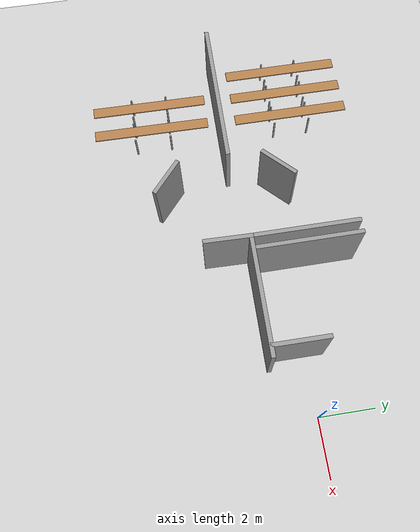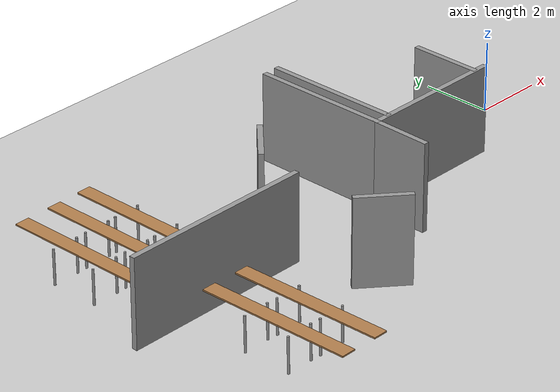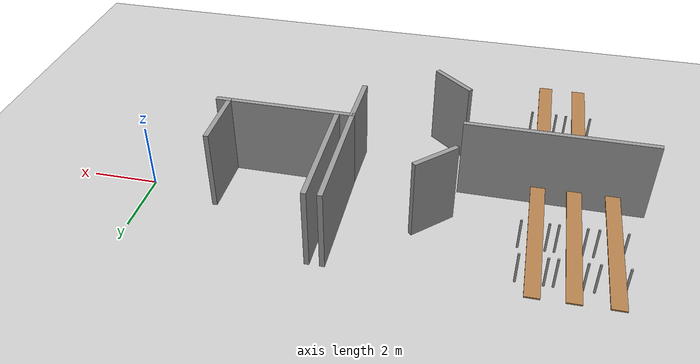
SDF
<sdf version="1.6">
 <world name="default">
  <model name="ground_plane">
   <static>1</static>
   <link name="link">
    <collision name="collision">
     <geometry><plane><normal>0 0 1</normal><size>100 100</size></plane></geometry>
     <surface><friction><ode><mu>100</mu><mu2>50</mu2></ode></friction></surface>
    </collision>
    <visual name="visual">
     <cast_shadows>0</cast_shadows>
     <geometry><plane><normal>0 0 1</normal><size>100 100</size></plane></geometry>
     <material>
      <script><uri>file://media/materials/scripts/gazebo.material</uri><name>Gazebo/Grey</name></script>
     </material>
    </visual>
   </link>
  </model>
  <model name="ca_vignal_1">
   <pose>-8.21048 -6.13752 0 0 -0 0</pose>
   <link name="Wall_10">
    <collision name="Wall_10_Collision">
     <geometry><box><size>1.49437 0.15 2.5</size></box></geometry>
     <pose>0 0 1.25 0 -0 0</pose>
    </collision>
    <visual name="Wall_10_Visual">
     <pose>0 0 1.25 0 -0 0</pose>
     <geometry><box><size>1.49437 0.15 2.5</size></box></geometry>
     <material>
      <script><uri>file://media/materials/scripts/gazebo.material</uri><name>Gazebo/Grey</name></script>
      <ambient>1 1 1 1</ambient>
     </material>
    </visual>
    <pose>-0.384063 2.18943 0 0 -0 2.44358</pose>
   </link>
   <link name="Wall_42">
    <collision name="Wall_42_Collision">
     <geometry><box><size>5.5 0.15 2.5</size></box></geometry>
     <pose>0 0 1.25 0 -0 0</pose>
    </collision>
    <visual name="Wall_42_Visual">
     <pose>0 0 1.25 0 -0 0</pose>
     <geometry><box><size>5.5 0.15 2.5</size></box></geometry>
     <material>
      <script><uri>file://media/materials/scripts/gazebo.material</uri><name>Gazebo/Grey</name></script>
      <ambient>1 1 1 1</ambient>
     </material>
    </visual>
    <pose>-3.69472 4.47149 0 0 -0 0</pose>
   </link>
   <link name="Wall_51">
    <collision name="Wall_51_Collision">
     <geometry><box><size>4.25 0.15 2.5</size></box></geometry>
     <pose>0 0 1.25 0 -0 0</pose>
    </collision>
    <visual name="Wall_51_Visual">
     <pose>0 0 1.25 0 -0 0</pose>
     <geometry><box><size>4.25 0.15 2.5</size></box></geometry>
     <material>
      <script><uri>file://media/materials/scripts/gazebo.material</uri><name>Gazebo/Grey</name></script>
      <ambient>1 1 1 1</ambient>
     </material>
    </visual>
    <pose>4.31972 4.76695 0 0 -0 0</pose>
   </link>
   <link name="Wall_54">
    <collision name="Wall_54_Collision">
     <geometry><box><size>3.851 0.15 2.5</size></box></geometry>
     <pose>0 0 1.25 0 -0 0</pose>
    </collision>
    <visual name="Wall_54_Visual">
     <pose>0 0 1.25 0 -0 0</pose>
     <geometry><box><size>3.851 0.15 2.5</size></box></geometry>
     <material>
      <script><uri>file://media/materials/scripts/gazebo.material</uri><name>Gazebo/Grey</name></script>
      <ambient>1 1 1 1</ambient>
     </material>
    </visual>
    <pose>2.6998 6.66167 0 0 -0 1.5762</pose>
   </link>
   <link name="Wall_56">
    <collision name="Wall_56_Collision">
     <geometry><box><size>3.88734 0.15 2.5</size></box></geometry>
     <pose>0 0 1.25 0 -0 0</pose>
    </collision>
    <visual name="Wall_56_Visual">
     <pose>0 0 1.25 0 -0 0</pose>
     <geometry><box><size>3.88734 0.15 2.5</size></box></geometry>
     <material>
      <script><uri>file://media/materials/scripts/gazebo.material</uri><name>Gazebo/Grey</name></script>
      <ambient>1 1 1 1</ambient>
     </material>
    </visual>
    <pose>2.26185 6.63562 0 0 0 -1.56659</pose>
   </link>
   <link name="Wall_6">
    <collision name="Wall_6_Collision">
     <geometry><box><size>1.5 0.15 2.5</size></box></geometry>
     <pose>0 0 1.25 0 -0 0</pose>
    </collision>
    <visual name="Wall_6_Visual">
     <pose>0 0 1.25 0 -0 0</pose>
     <geometry><box><size>1.5 0.15 2.5</size></box></geometry>
     <material>
      <script><uri>file://media/materials/scripts/gazebo.material</uri><name>Gazebo/Grey</name></script>
      <ambient>1 1 1 1</ambient>
     </material>
    </visual>
    <pose>-0.385857 6.20886 0 0 0 -2.35619</pose>
   </link>
   <link name="Wall_60">
    <collision name="Wall_60_Collision">
     <geometry><box><size>2 0.15 2.5</size></box></geometry>
     <pose>0 0 1.25 0 -0 0</pose>
    </collision>
    <visual name="Wall_60_Visual">
     <pose>0 0 1.25 0 -0 0</pose>
     <geometry><box><size>2 0.15 2.5</size></box></geometry>
     <material>
      <script><uri>file://media/materials/scripts/gazebo.material</uri><name>Gazebo/Grey</name></script>
      <ambient>1 1 1 1</ambient>
     </material>
    </visual>
    <pose>6.0398 5.73717 0 0 0 -1.5708</pose>
   </link>
   <link name="Wall_84">
    <collision name="Wall_84_Collision">
     <geometry><box><size>1.72888 0.15 2.5</size></box></geometry>
     <pose>0 0 1.25 0 -0 0</pose>
    </collision>
    <visual name="Wall_84_Visual">
     <pose>0 0 1.25 0 -0 0</pose>
     <geometry><box><size>1.72888 0.15 2.5</size></box></geometry>
     <material>
      <script><uri>file://media/materials/scripts/gazebo.material</uri><name>Gazebo/Grey</name></script>
      <ambient>1 1 1 1</ambient>
     </material>
    </visual>
    <pose>2.25629 3.97763 0 0 -0 1.55378</pose>
   </link>
   <static>1</static>
  </model>
  <model name="tablesclass_clone_6">
   <link name="link">
    <inertial>
     <inertia><ixx>0</ixx><ixy>0</ixy><ixz>0</ixz><iyy>0</iyy><iyz>0</iyz><izz>0</izz></inertia>
     <mass>1.73923</mass>
    </inertial>
    <visual name="front_right_leg">
     <pose>0.68 -0.38 0.5 0 -0 0</pose>
     <geometry><cylinder><radius>0.0324505</radius><length>1</length></cylinder></geometry>
     <material>
      <script><uri>file://media/materials/scripts/gazebo.material</uri><name>Gazebo/Grey</name></script>
      <ambient>0.3 0.3 0.3 1</ambient>
      <diffuse>0.7 0.7 0.7 1</diffuse>
      <specular>0.01 0.01 0.01 1</specular>
      <emissive>0 0 0 1</emissive>
     </material>
    </visual>
    <visual name="back_left_leg">
     <pose>-0.68 0.38 0.5 0 -0 0</pose>
     <geometry><cylinder><radius>0.0324505</radius><length>1</length></cylinder></geometry>
     <material>
      <script><uri>file://media/materials/scripts/gazebo.material</uri><name>Gazebo/Grey</name></script>
      <ambient>0.3 0.3 0.3 1</ambient>
      <diffuse>0.7 0.7 0.7 1</diffuse>
      <specular>0.01 0.01 0.01 1</specular>
      <emissive>0 0 0 1</emissive>
     </material>
    </visual>
    <visual name="front_left_leg">
     <pose>0.68 0.38 0.5 0 -0 0</pose>
     <geometry><cylinder><radius>0.0324505</radius><length>1</length></cylinder></geometry>
     <material>
      <script><uri>file://media/materials/scripts/gazebo.material</uri><name>Gazebo/Grey</name></script>
      <ambient>0.3 0.3 0.3 1</ambient>
      <diffuse>0.7 0.7 0.7 1</diffuse>
      <specular>0.01 0.01 0.01 1</specular>
      <emissive>0 0 0 1</emissive>
     </material>
    </visual>
    <visual name="visual1">
     <pose>0 0 1 0 -0 0</pose>
     <geometry><box><size>4.38513 0.412326 0.04</size></box></geometry>
     <material>
      <script><uri>file://media/materials/scripts/gazebo.material</uri><name>Gazebo/Wood</name></script>
      <ambient>1 1 1 1</ambient>
      <diffuse>1 1 1 1</diffuse>
      <specular>0.2 0.2 0.2 1</specular>
      <emissive>0 0 0 1</emissive>
     </material>
    </visual>
    <visual name="back_right_leg">
     <pose>-0.68 -0.38 0.5 0 -0 0</pose>
     <geometry><cylinder><radius>0.0324505</radius><length>1</length></cylinder></geometry>
     <material>
      <script><uri>file://media/materials/scripts/gazebo.material</uri><name>Gazebo/Grey</name></script>
      <ambient>0.3 0.3 0.3 1</ambient>
      <diffuse>0.7 0.7 0.7 1</diffuse>
      <specular>0.01 0.01 0.01 1</specular>
      <emissive>0 0 0 1</emissive>
     </material>
    </visual>
    <collision name="front_left_leg">
     <pose>0.68 0.38 0.5 0 -0 0</pose>
     <geometry><cylinder><radius>0.03245</radius><length>1</length></cylinder></geometry>
     <surface>
      <friction>
       <ode><mu>1</mu><mu2>1</mu2><fdir1>0 0 0</fdir1><slip1>0</slip1><slip2>0</slip2></ode>
       <torsional>
        <coefficient>1</coefficient>
        <patch_radius>0</patch_radius>
        <surface_radius>0</surface_radius>
        <use_patch_radius>1</use_patch_radius>
        <ode><slip>0</slip></ode>
       </torsional>
      </friction>
      <bounce><restitution_coefficient>0</restitution_coefficient><threshold>1e+06</threshold></bounce>
      <contact>
       <collide_without_contact>0</collide_without_contact>
       <collide_without_contact_bitmask>1</collide_without_contact_bitmask>
       <collide_bitmask>1</collide_bitmask>
       <ode>
        <soft_cfm>0</soft_cfm>
        <soft_erp>0.2</soft_erp>
        <kp>1e+13</kp>
        <kd>1</kd>
        <max_vel>0.01</max_vel>
        <min_depth>0</min_depth>
       </ode>
       <bullet>
        <split_impulse>1</split_impulse>
        <split_impulse_penetration_threshold>-0.01</split_impulse_penetration_threshold>
        <soft_cfm>0</soft_cfm>
        <soft_erp>0.2</soft_erp>
        <kp>1e+13</kp>
        <kd>1</kd>
       </bullet>
      </contact>
     </surface>
    </collision>
    <collision name="front_right_leg">
     <pose>0.68 -0.38 0.5 0 -0 0</pose>
     <geometry><cylinder><radius>0.03245</radius><length>1</length></cylinder></geometry>
     <surface>
      <friction>
       <ode><mu>1</mu><mu2>1</mu2><fdir1>0 0 0</fdir1><slip1>0</slip1><slip2>0</slip2></ode>
       <torsional>
        <coefficient>1</coefficient>
        <patch_radius>0</patch_radius>
        <surface_radius>0</surface_radius>
        <use_patch_radius>1</use_patch_radius>
        <ode><slip>0</slip></ode>
       </torsional>
      </friction>
      <bounce><restitution_coefficient>0</restitution_coefficient><threshold>1e+06</threshold></bounce>
      <contact>
       <collide_without_contact>0</collide_without_contact>
       <collide_without_contact_bitmask>1</collide_without_contact_bitmask>
       <collide_bitmask>1</collide_bitmask>
       <ode>
        <soft_cfm>0</soft_cfm>
        <soft_erp>0.2</soft_erp>
        <kp>1e+13</kp>
        <kd>1</kd>
        <max_vel>0.01</max_vel>
        <min_depth>0</min_depth>
       </ode>
       <bullet>
        <split_impulse>1</split_impulse>
        <split_impulse_penetration_threshold>-0.01</split_impulse_penetration_threshold>
        <soft_cfm>0</soft_cfm>
        <soft_erp>0.2</soft_erp>
        <kp>1e+13</kp>
        <kd>1</kd>
       </bullet>
      </contact>
     </surface>
    </collision>
    <collision name="back_left_leg">
     <pose>-0.68 0.38 0.5 0 -0 0</pose>
     <geometry><cylinder><radius>0.03245</radius><length>1</length></cylinder></geometry>
     <surface>
      <friction>
       <ode><mu>1</mu><mu2>1</mu2><fdir1>0 0 0</fdir1><slip1>0</slip1><slip2>0</slip2></ode>
       <torsional>
        <coefficient>1</coefficient>
        <patch_radius>0</patch_radius>
        <surface_radius>0</surface_radius>
        <use_patch_radius>1</use_patch_radius>
        <ode><slip>0</slip></ode>
       </torsional>
      </friction>
      <bounce><restitution_coefficient>0</restitution_coefficient><threshold>1e+06</threshold></bounce>
      <contact>
       <collide_without_contact>0</collide_without_contact>
       <collide_without_contact_bitmask>1</collide_without_contact_bitmask>
       <collide_bitmask>1</collide_bitmask>
       <ode>
        <soft_cfm>0</soft_cfm>
        <soft_erp>0.2</soft_erp>
        <kp>1e+13</kp>
        <kd>1</kd>
        <max_vel>0.01</max_vel>
        <min_depth>0</min_depth>
       </ode>
       <bullet>
        <split_impulse>1</split_impulse>
        <split_impulse_penetration_threshold>-0.01</split_impulse_penetration_threshold>
        <soft_cfm>0</soft_cfm>
        <soft_erp>0.2</soft_erp>
        <kp>1e+13</kp>
        <kd>1</kd>
       </bullet>
      </contact>
     </surface>
    </collision>
    <collision name="back_right_leg">
     <pose>-0.68 -0.38 0.5 0 -0 0</pose>
     <geometry><cylinder><radius>0.03245</radius><length>1</length></cylinder></geometry>
     <surface>
      <friction>
       <ode><mu>1</mu><mu2>1</mu2><fdir1>0 0 0</fdir1><slip1>0</slip1><slip2>0</slip2></ode>
       <torsional>
        <coefficient>1</coefficient>
        <patch_radius>0</patch_radius>
        <surface_radius>0</surface_radius>
        <use_patch_radius>1</use_patch_radius>
        <ode><slip>0</slip></ode>
       </torsional>
      </friction>
      <bounce><restitution_coefficient>0</restitution_coefficient><threshold>1e+06</threshold></bounce>
      <contact>
       <collide_without_contact>0</collide_without_contact>
       <collide_without_contact_bitmask>1</collide_without_contact_bitmask>
       <collide_bitmask>1</collide_bitmask>
       <ode>
        <soft_cfm>0</soft_cfm>
        <soft_erp>0.2</soft_erp>
        <kp>1e+13</kp>
        <kd>1</kd>
        <max_vel>0.01</max_vel>
        <min_depth>0</min_depth>
       </ode>
       <bullet>
        <split_impulse>1</split_impulse>
        <split_impulse_penetration_threshold>-0.01</split_impulse_penetration_threshold>
        <soft_cfm>0</soft_cfm>
        <soft_erp>0.2</soft_erp>
        <kp>1e+13</kp>
        <kd>1</kd>
       </bullet>
      </contact>
     </surface>
    </collision>
    <collision name="surface">
     <pose>0 0 1 0 -0 0</pose>
     <geometry><box><size>4.69836 0.412326 0.03</size></box></geometry>
     <surface>
      <friction>
       <ode><mu>0.6</mu><mu2>0.6</mu2><fdir1>0 0 0</fdir1><slip1>0</slip1><slip2>0</slip2></ode>
       <torsional>
        <coefficient>1</coefficient>
        <patch_radius>0</patch_radius>
        <surface_radius>0</surface_radius>
        <use_patch_radius>1</use_patch_radius>
        <ode><slip>0</slip></ode>
       </torsional>
      </friction>
      <bounce><restitution_coefficient>0</restitution_coefficient><threshold>1e+06</threshold></bounce>
      <contact>
       <collide_without_contact>0</collide_without_contact>
       <collide_without_contact_bitmask>1</collide_without_contact_bitmask>
       <collide_bitmask>1</collide_bitmask>
       <ode>
        <soft_cfm>0</soft_cfm>
        <soft_erp>0.2</soft_erp>
        <kp>1e+13</kp>
        <kd>1</kd>
        <max_vel>0.01</max_vel>
        <min_depth>0</min_depth>
       </ode>
       <bullet>
        <split_impulse>1</split_impulse>
        <split_impulse_penetration_threshold>-0.01</split_impulse_penetration_threshold>
        <soft_cfm>0</soft_cfm>
        <soft_erp>0.2</soft_erp>
        <kp>1e+13</kp>
        <kd>1</kd>
       </bullet>
      </contact>
     </surface>
    </collision>
   </link>
   <static>0</static>
   <pose>-12.6036 -4.30226 0.011054 -3e-06 -0.015515 -1.56411</pose>
  </model>
  <model name="tablesclass_clone_8">
   <link name="link">
    <inertial>
     <inertia><ixx>0</ixx><ixy>0</ixy><ixz>0</ixz><iyy>0</iyy><iyz>0</iyz><izz>0</izz></inertia>
     <mass>1.73923</mass>
    </inertial>
    <visual name="front_right_leg">
     <pose>0.68 -0.38 0.5 0 -0 0</pose>
     <geometry><cylinder><radius>0.0324505</radius><length>1</length></cylinder></geometry>
     <material>
      <script><uri>file://media/materials/scripts/gazebo.material</uri><name>Gazebo/Grey</name></script>
      <ambient>0.3 0.3 0.3 1</ambient>
      <diffuse>0.7 0.7 0.7 1</diffuse>
      <specular>0.01 0.01 0.01 1</specular>
      <emissive>0 0 0 1</emissive>
     </material>
    </visual>
    <visual name="back_left_leg">
     <pose>-0.68 0.38 0.5 0 -0 0</pose>
     <geometry><cylinder><radius>0.0324505</radius><length>1</length></cylinder></geometry>
     <material>
      <script><uri>file://media/materials/scripts/gazebo.material</uri><name>Gazebo/Grey</name></script>
      <ambient>0.3 0.3 0.3 1</ambient>
      <diffuse>0.7 0.7 0.7 1</diffuse>
      <specular>0.01 0.01 0.01 1</specular>
      <emissive>0 0 0 1</emissive>
     </material>
    </visual>
    <visual name="front_left_leg">
     <pose>0.68 0.38 0.5 0 -0 0</pose>
     <geometry><cylinder><radius>0.0324505</radius><length>1</length></cylinder></geometry>
     <material>
      <script><uri>file://media/materials/scripts/gazebo.material</uri><name>Gazebo/Grey</name></script>
      <ambient>0.3 0.3 0.3 1</ambient>
      <diffuse>0.7 0.7 0.7 1</diffuse>
      <specular>0.01 0.01 0.01 1</specular>
      <emissive>0 0 0 1</emissive>
     </material>
    </visual>
    <visual name="visual1">
     <pose>0 0 1 0 -0 0</pose>
     <geometry><box><size>4.38513 0.412326 0.04</size></box></geometry>
     <material>
      <script><uri>file://media/materials/scripts/gazebo.material</uri><name>Gazebo/Wood</name></script>
      <ambient>1 1 1 1</ambient>
      <diffuse>1 1 1 1</diffuse>
      <specular>0.2 0.2 0.2 1</specular>
      <emissive>0 0 0 1</emissive>
     </material>
    </visual>
    <visual name="back_right_leg">
     <pose>-0.68 -0.38 0.5 0 -0 0</pose>
     <geometry><cylinder><radius>0.0324505</radius><length>1</length></cylinder></geometry>
     <material>
      <script><uri>file://media/materials/scripts/gazebo.material</uri><name>Gazebo/Grey</name></script>
      <ambient>0.3 0.3 0.3 1</ambient>
      <diffuse>0.7 0.7 0.7 1</diffuse>
      <specular>0.01 0.01 0.01 1</specular>
      <emissive>0 0 0 1</emissive>
     </material>
    </visual>
    <collision name="front_left_leg">
     <pose>0.68 0.38 0.5 0 -0 0</pose>
     <geometry><cylinder><radius>0.03245</radius><length>1</length></cylinder></geometry>
     <surface>
      <friction>
       <ode><mu>1</mu><mu2>1</mu2><fdir1>0 0 0</fdir1><slip1>0</slip1><slip2>0</slip2></ode>
       <torsional>
        <coefficient>1</coefficient>
        <patch_radius>0</patch_radius>
        <surface_radius>0</surface_radius>
        <use_patch_radius>1</use_patch_radius>
        <ode><slip>0</slip></ode>
       </torsional>
      </friction>
      <bounce><restitution_coefficient>0</restitution_coefficient><threshold>1e+06</threshold></bounce>
      <contact>
       <collide_without_contact>0</collide_without_contact>
       <collide_without_contact_bitmask>1</collide_without_contact_bitmask>
       <collide_bitmask>1</collide_bitmask>
       <ode>
        <soft_cfm>0</soft_cfm>
        <soft_erp>0.2</soft_erp>
        <kp>1e+13</kp>
        <kd>1</kd>
        <max_vel>0.01</max_vel>
        <min_depth>0</min_depth>
       </ode>
       <bullet>
        <split_impulse>1</split_impulse>
        <split_impulse_penetration_threshold>-0.01</split_impulse_penetration_threshold>
        <soft_cfm>0</soft_cfm>
        <soft_erp>0.2</soft_erp>
        <kp>1e+13</kp>
        <kd>1</kd>
       </bullet>
      </contact>
     </surface>
    </collision>
    <collision name="front_right_leg">
     <pose>0.68 -0.38 0.5 0 -0 0</pose>
     <geometry><cylinder><radius>0.03245</radius><length>1</length></cylinder></geometry>
     <surface>
      <friction>
       <ode><mu>1</mu><mu2>1</mu2><fdir1>0 0 0</fdir1><slip1>0</slip1><slip2>0</slip2></ode>
       <torsional>
        <coefficient>1</coefficient>
        <patch_radius>0</patch_radius>
        <surface_radius>0</surface_radius>
        <use_patch_radius>1</use_patch_radius>
        <ode><slip>0</slip></ode>
       </torsional>
      </friction>
      <bounce><restitution_coefficient>0</restitution_coefficient><threshold>1e+06</threshold></bounce>
      <contact>
       <collide_without_contact>0</collide_without_contact>
       <collide_without_contact_bitmask>1</collide_without_contact_bitmask>
       <collide_bitmask>1</collide_bitmask>
       <ode>
        <soft_cfm>0</soft_cfm>
        <soft_erp>0.2</soft_erp>
        <kp>1e+13</kp>
        <kd>1</kd>
        <max_vel>0.01</max_vel>
        <min_depth>0</min_depth>
       </ode>
       <bullet>
        <split_impulse>1</split_impulse>
        <split_impulse_penetration_threshold>-0.01</split_impulse_penetration_threshold>
        <soft_cfm>0</soft_cfm>
        <soft_erp>0.2</soft_erp>
        <kp>1e+13</kp>
        <kd>1</kd>
       </bullet>
      </contact>
     </surface>
    </collision>
    <collision name="back_left_leg">
     <pose>-0.68 0.38 0.5 0 -0 0</pose>
     <geometry><cylinder><radius>0.03245</radius><length>1</length></cylinder></geometry>
     <surface>
      <friction>
       <ode><mu>1</mu><mu2>1</mu2><fdir1>0 0 0</fdir1><slip1>0</slip1><slip2>0</slip2></ode>
       <torsional>
        <coefficient>1</coefficient>
        <patch_radius>0</patch_radius>
        <surface_radius>0</surface_radius>
        <use_patch_radius>1</use_patch_radius>
        <ode><slip>0</slip></ode>
       </torsional>
      </friction>
      <bounce><restitution_coefficient>0</restitution_coefficient><threshold>1e+06</threshold></bounce>
      <contact>
       <collide_without_contact>0</collide_without_contact>
       <collide_without_contact_bitmask>1</collide_without_contact_bitmask>
       <collide_bitmask>1</collide_bitmask>
       <ode>
        <soft_cfm>0</soft_cfm>
        <soft_erp>0.2</soft_erp>
        <kp>1e+13</kp>
        <kd>1</kd>
        <max_vel>0.01</max_vel>
        <min_depth>0</min_depth>
       </ode>
       <bullet>
        <split_impulse>1</split_impulse>
        <split_impulse_penetration_threshold>-0.01</split_impulse_penetration_threshold>
        <soft_cfm>0</soft_cfm>
        <soft_erp>0.2</soft_erp>
        <kp>1e+13</kp>
        <kd>1</kd>
       </bullet>
      </contact>
     </surface>
    </collision>
    <collision name="back_right_leg">
     <pose>-0.68 -0.38 0.5 0 -0 0</pose>
     <geometry><cylinder><radius>0.03245</radius><length>1</length></cylinder></geometry>
     <surface>
      <friction>
       <ode><mu>1</mu><mu2>1</mu2><fdir1>0 0 0</fdir1><slip1>0</slip1><slip2>0</slip2></ode>
       <torsional>
        <coefficient>1</coefficient>
        <patch_radius>0</patch_radius>
        <surface_radius>0</surface_radius>
        <use_patch_radius>1</use_patch_radius>
        <ode><slip>0</slip></ode>
       </torsional>
      </friction>
      <bounce><restitution_coefficient>0</restitution_coefficient><threshold>1e+06</threshold></bounce>
      <contact>
       <collide_without_contact>0</collide_without_contact>
       <collide_without_contact_bitmask>1</collide_without_contact_bitmask>
       <collide_bitmask>1</collide_bitmask>
       <ode>
        <soft_cfm>0</soft_cfm>
        <soft_erp>0.2</soft_erp>
        <kp>1e+13</kp>
        <kd>1</kd>
        <max_vel>0.01</max_vel>
        <min_depth>0</min_depth>
       </ode>
       <bullet>
        <split_impulse>1</split_impulse>
        <split_impulse_penetration_threshold>-0.01</split_impulse_penetration_threshold>
        <soft_cfm>0</soft_cfm>
        <soft_erp>0.2</soft_erp>
        <kp>1e+13</kp>
        <kd>1</kd>
       </bullet>
      </contact>
     </surface>
    </collision>
    <collision name="surface">
     <pose>0 0 1 0 -0 0</pose>
     <geometry><box><size>4.69836 0.412326 0.03</size></box></geometry>
     <surface>
      <friction>
       <ode><mu>0.6</mu><mu2>0.6</mu2><fdir1>0 0 0</fdir1><slip1>0</slip1><slip2>0</slip2></ode>
       <torsional>
        <coefficient>1</coefficient>
        <patch_radius>0</patch_radius>
        <surface_radius>0</surface_radius>
        <use_patch_radius>1</use_patch_radius>
        <ode><slip>0</slip></ode>
       </torsional>
      </friction>
      <bounce><restitution_coefficient>0</restitution_coefficient><threshold>1e+06</threshold></bounce>
      <contact>
       <collide_without_contact>0</collide_without_contact>
       <collide_without_contact_bitmask>1</collide_without_contact_bitmask>
       <collide_bitmask>1</collide_bitmask>
       <ode>
        <soft_cfm>0</soft_cfm>
        <soft_erp>0.2</soft_erp>
        <kp>1e+13</kp>
        <kd>1</kd>
        <max_vel>0.01</max_vel>
        <min_depth>0</min_depth>
       </ode>
       <bullet>
        <split_impulse>1</split_impulse>
        <split_impulse_penetration_threshold>-0.01</split_impulse_penetration_threshold>
        <soft_cfm>0</soft_cfm>
        <soft_erp>0.2</soft_erp>
        <kp>1e+13</kp>
        <kd>1</kd>
       </bullet>
      </contact>
     </surface>
    </collision>
   </link>
   <static>0</static>
   <pose>-11.5378 -4.3155 0.011741 0 -0.016496 -1.56429</pose>
  </model>
  <model name="tablesclass_clone_9">
   <link name="link">
    <inertial>
     <inertia><ixx>0</ixx><ixy>0</ixy><ixz>0</ixz><iyy>0</iyy><iyz>0</iyz><izz>0</izz></inertia>
     <mass>1.73923</mass>
    </inertial>
    <visual name="front_right_leg">
     <pose>0.68 -0.38 0.5 0 -0 0</pose>
     <geometry><cylinder><radius>0.0324505</radius><length>1</length></cylinder></geometry>
     <material>
      <script><uri>file://media/materials/scripts/gazebo.material</uri><name>Gazebo/Grey</name></script>
      <ambient>0.3 0.3 0.3 1</ambient>
      <diffuse>0.7 0.7 0.7 1</diffuse>
      <specular>0.01 0.01 0.01 1</specular>
      <emissive>0 0 0 1</emissive>
     </material>
    </visual>
    <visual name="back_left_leg">
     <pose>-0.68 0.38 0.5 0 -0 0</pose>
     <geometry><cylinder><radius>0.0324505</radius><length>1</length></cylinder></geometry>
     <material>
      <script><uri>file://media/materials/scripts/gazebo.material</uri><name>Gazebo/Grey</name></script>
      <ambient>0.3 0.3 0.3 1</ambient>
      <diffuse>0.7 0.7 0.7 1</diffuse>
      <specular>0.01 0.01 0.01 1</specular>
      <emissive>0 0 0 1</emissive>
     </material>
    </visual>
    <visual name="front_left_leg">
     <pose>0.68 0.38 0.5 0 -0 0</pose>
     <geometry><cylinder><radius>0.0324505</radius><length>1</length></cylinder></geometry>
     <material>
      <script><uri>file://media/materials/scripts/gazebo.material</uri><name>Gazebo/Grey</name></script>
      <ambient>0.3 0.3 0.3 1</ambient>
      <diffuse>0.7 0.7 0.7 1</diffuse>
      <specular>0.01 0.01 0.01 1</specular>
      <emissive>0 0 0 1</emissive>
     </material>
    </visual>
    <visual name="visual1">
     <pose>0 0 1 0 -0 0</pose>
     <geometry><box><size>4.38513 0.412326 0.04</size></box></geometry>
     <material>
      <script><uri>file://media/materials/scripts/gazebo.material</uri><name>Gazebo/Wood</name></script>
      <ambient>1 1 1 1</ambient>
      <diffuse>1 1 1 1</diffuse>
      <specular>0.2 0.2 0.2 1</specular>
      <emissive>0 0 0 1</emissive>
     </material>
    </visual>
    <visual name="back_right_leg">
     <pose>-0.68 -0.38 0.5 0 -0 0</pose>
     <geometry><cylinder><radius>0.0324505</radius><length>1</length></cylinder></geometry>
     <material>
      <script><uri>file://media/materials/scripts/gazebo.material</uri><name>Gazebo/Grey</name></script>
      <ambient>0.3 0.3 0.3 1</ambient>
      <diffuse>0.7 0.7 0.7 1</diffuse>
      <specular>0.01 0.01 0.01 1</specular>
      <emissive>0 0 0 1</emissive>
     </material>
    </visual>
    <collision name="front_left_leg">
     <pose>0.68 0.38 0.5 0 -0 0</pose>
     <geometry><cylinder><radius>0.03245</radius><length>1</length></cylinder></geometry>
     <surface>
      <friction>
       <ode><mu>1</mu><mu2>1</mu2><fdir1>0 0 0</fdir1><slip1>0</slip1><slip2>0</slip2></ode>
       <torsional>
        <coefficient>1</coefficient>
        <patch_radius>0</patch_radius>
        <surface_radius>0</surface_radius>
        <use_patch_radius>1</use_patch_radius>
        <ode><slip>0</slip></ode>
       </torsional>
      </friction>
      <bounce><restitution_coefficient>0</restitution_coefficient><threshold>1e+06</threshold></bounce>
      <contact>
       <collide_without_contact>0</collide_without_contact>
       <collide_without_contact_bitmask>1</collide_without_contact_bitmask>
       <collide_bitmask>1</collide_bitmask>
       <ode>
        <soft_cfm>0</soft_cfm>
        <soft_erp>0.2</soft_erp>
        <kp>1e+13</kp>
        <kd>1</kd>
        <max_vel>0.01</max_vel>
        <min_depth>0</min_depth>
       </ode>
       <bullet>
        <split_impulse>1</split_impulse>
        <split_impulse_penetration_threshold>-0.01</split_impulse_penetration_threshold>
        <soft_cfm>0</soft_cfm>
        <soft_erp>0.2</soft_erp>
        <kp>1e+13</kp>
        <kd>1</kd>
       </bullet>
      </contact>
     </surface>
    </collision>
    <collision name="front_right_leg">
     <pose>0.68 -0.38 0.5 0 -0 0</pose>
     <geometry><cylinder><radius>0.03245</radius><length>1</length></cylinder></geometry>
     <surface>
      <friction>
       <ode><mu>1</mu><mu2>1</mu2><fdir1>0 0 0</fdir1><slip1>0</slip1><slip2>0</slip2></ode>
       <torsional>
        <coefficient>1</coefficient>
        <patch_radius>0</patch_radius>
        <surface_radius>0</surface_radius>
        <use_patch_radius>1</use_patch_radius>
        <ode><slip>0</slip></ode>
       </torsional>
      </friction>
      <bounce><restitution_coefficient>0</restitution_coefficient><threshold>1e+06</threshold></bounce>
      <contact>
       <collide_without_contact>0</collide_without_contact>
       <collide_without_contact_bitmask>1</collide_without_contact_bitmask>
       <collide_bitmask>1</collide_bitmask>
       <ode>
        <soft_cfm>0</soft_cfm>
        <soft_erp>0.2</soft_erp>
        <kp>1e+13</kp>
        <kd>1</kd>
        <max_vel>0.01</max_vel>
        <min_depth>0</min_depth>
       </ode>
       <bullet>
        <split_impulse>1</split_impulse>
        <split_impulse_penetration_threshold>-0.01</split_impulse_penetration_threshold>
        <soft_cfm>0</soft_cfm>
        <soft_erp>0.2</soft_erp>
        <kp>1e+13</kp>
        <kd>1</kd>
       </bullet>
      </contact>
     </surface>
    </collision>
    <collision name="back_left_leg">
     <pose>-0.68 0.38 0.5 0 -0 0</pose>
     <geometry><cylinder><radius>0.03245</radius><length>1</length></cylinder></geometry>
     <surface>
      <friction>
       <ode><mu>1</mu><mu2>1</mu2><fdir1>0 0 0</fdir1><slip1>0</slip1><slip2>0</slip2></ode>
       <torsional>
        <coefficient>1</coefficient>
        <patch_radius>0</patch_radius>
        <surface_radius>0</surface_radius>
        <use_patch_radius>1</use_patch_radius>
        <ode><slip>0</slip></ode>
       </torsional>
      </friction>
      <bounce><restitution_coefficient>0</restitution_coefficient><threshold>1e+06</threshold></bounce>
      <contact>
       <collide_without_contact>0</collide_without_contact>
       <collide_without_contact_bitmask>1</collide_without_contact_bitmask>
       <collide_bitmask>1</collide_bitmask>
       <ode>
        <soft_cfm>0</soft_cfm>
        <soft_erp>0.2</soft_erp>
        <kp>1e+13</kp>
        <kd>1</kd>
        <max_vel>0.01</max_vel>
        <min_depth>0</min_depth>
       </ode>
       <bullet>
        <split_impulse>1</split_impulse>
        <split_impulse_penetration_threshold>-0.01</split_impulse_penetration_threshold>
        <soft_cfm>0</soft_cfm>
        <soft_erp>0.2</soft_erp>
        <kp>1e+13</kp>
        <kd>1</kd>
       </bullet>
      </contact>
     </surface>
    </collision>
    <collision name="back_right_leg">
     <pose>-0.68 -0.38 0.5 0 -0 0</pose>
     <geometry><cylinder><radius>0.03245</radius><length>1</length></cylinder></geometry>
     <surface>
      <friction>
       <ode><mu>1</mu><mu2>1</mu2><fdir1>0 0 0</fdir1><slip1>0</slip1><slip2>0</slip2></ode>
       <torsional>
        <coefficient>1</coefficient>
        <patch_radius>0</patch_radius>
        <surface_radius>0</surface_radius>
        <use_patch_radius>1</use_patch_radius>
        <ode><slip>0</slip></ode>
       </torsional>
      </friction>
      <bounce><restitution_coefficient>0</restitution_coefficient><threshold>1e+06</threshold></bounce>
      <contact>
       <collide_without_contact>0</collide_without_contact>
       <collide_without_contact_bitmask>1</collide_without_contact_bitmask>
       <collide_bitmask>1</collide_bitmask>
       <ode>
        <soft_cfm>0</soft_cfm>
        <soft_erp>0.2</soft_erp>
        <kp>1e+13</kp>
        <kd>1</kd>
        <max_vel>0.01</max_vel>
        <min_depth>0</min_depth>
       </ode>
       <bullet>
        <split_impulse>1</split_impulse>
        <split_impulse_penetration_threshold>-0.01</split_impulse_penetration_threshold>
        <soft_cfm>0</soft_cfm>
        <soft_erp>0.2</soft_erp>
        <kp>1e+13</kp>
        <kd>1</kd>
       </bullet>
      </contact>
     </surface>
    </collision>
    <collision name="surface">
     <pose>0 0 1 0 -0 0</pose>
     <geometry><box><size>4.69836 0.412326 0.03</size></box></geometry>
     <surface>
      <friction>
       <ode><mu>0.6</mu><mu2>0.6</mu2><fdir1>0 0 0</fdir1><slip1>0</slip1><slip2>0</slip2></ode>
       <torsional>
        <coefficient>1</coefficient>
        <patch_radius>0</patch_radius>
        <surface_radius>0</surface_radius>
        <use_patch_radius>1</use_patch_radius>
        <ode><slip>0</slip></ode>
       </torsional>
      </friction>
      <bounce><restitution_coefficient>0</restitution_coefficient><threshold>1e+06</threshold></bounce>
      <contact>
       <collide_without_contact>0</collide_without_contact>
       <collide_without_contact_bitmask>1</collide_without_contact_bitmask>
       <collide_bitmask>1</collide_bitmask>
       <ode>
        <soft_cfm>0</soft_cfm>
        <soft_erp>0.2</soft_erp>
        <kp>1e+13</kp>
        <kd>1</kd>
        <max_vel>0.01</max_vel>
        <min_depth>0</min_depth>
       </ode>
       <bullet>
        <split_impulse>1</split_impulse>
        <split_impulse_penetration_threshold>-0.01</split_impulse_penetration_threshold>
        <soft_cfm>0</soft_cfm>
        <soft_erp>0.2</soft_erp>
        <kp>1e+13</kp>
        <kd>1</kd>
       </bullet>
      </contact>
     </surface>
    </collision>
   </link>
   <static>0</static>
   <pose>-13.5695 1.12448 -8e-06 0 2e-06 -1.56441</pose>
  </model>
  <model name="tablesclass_clone_10">
   <link name="link">
    <inertial>
     <inertia><ixx>0</ixx><ixy>0</ixy><ixz>0</ixz><iyy>0</iyy><iyz>0</iyz><izz>0</izz></inertia>
     <mass>1.73923</mass>
    </inertial>
    <visual name="front_right_leg">
     <pose>0.68 -0.38 0.5 0 -0 0</pose>
     <geometry><cylinder><radius>0.0324505</radius><length>1</length></cylinder></geometry>
     <material>
      <script><uri>file://media/materials/scripts/gazebo.material</uri><name>Gazebo/Grey</name></script>
      <ambient>0.3 0.3 0.3 1</ambient>
      <diffuse>0.7 0.7 0.7 1</diffuse>
      <specular>0.01 0.01 0.01 1</specular>
      <emissive>0 0 0 1</emissive>
     </material>
    </visual>
    <visual name="back_left_leg">
     <pose>-0.68 0.38 0.5 0 -0 0</pose>
     <geometry><cylinder><radius>0.0324505</radius><length>1</length></cylinder></geometry>
     <material>
      <script><uri>file://media/materials/scripts/gazebo.material</uri><name>Gazebo/Grey</name></script>
      <ambient>0.3 0.3 0.3 1</ambient>
      <diffuse>0.7 0.7 0.7 1</diffuse>
      <specular>0.01 0.01 0.01 1</specular>
      <emissive>0 0 0 1</emissive>
     </material>
    </visual>
    <visual name="front_left_leg">
     <pose>0.68 0.38 0.5 0 -0 0</pose>
     <geometry><cylinder><radius>0.0324505</radius><length>1</length></cylinder></geometry>
     <material>
      <script><uri>file://media/materials/scripts/gazebo.material</uri><name>Gazebo/Grey</name></script>
      <ambient>0.3 0.3 0.3 1</ambient>
      <diffuse>0.7 0.7 0.7 1</diffuse>
      <specular>0.01 0.01 0.01 1</specular>
      <emissive>0 0 0 1</emissive>
     </material>
    </visual>
    <visual name="visual1">
     <pose>0 0 1 0 -0 0</pose>
     <geometry><box><size>4.38513 0.412326 0.04</size></box></geometry>
     <material>
      <script><uri>file://media/materials/scripts/gazebo.material</uri><name>Gazebo/Wood</name></script>
      <ambient>1 1 1 1</ambient>
      <diffuse>1 1 1 1</diffuse>
      <specular>0.2 0.2 0.2 1</specular>
      <emissive>0 0 0 1</emissive>
     </material>
    </visual>
    <visual name="back_right_leg">
     <pose>-0.68 -0.38 0.5 0 -0 0</pose>
     <geometry><cylinder><radius>0.0324505</radius><length>1</length></cylinder></geometry>
     <material>
      <script><uri>file://media/materials/scripts/gazebo.material</uri><name>Gazebo/Grey</name></script>
      <ambient>0.3 0.3 0.3 1</ambient>
      <diffuse>0.7 0.7 0.7 1</diffuse>
      <specular>0.01 0.01 0.01 1</specular>
      <emissive>0 0 0 1</emissive>
     </material>
    </visual>
    <collision name="front_left_leg">
     <pose>0.68 0.38 0.5 0 -0 0</pose>
     <geometry><cylinder><radius>0.03245</radius><length>1</length></cylinder></geometry>
     <surface>
      <friction>
       <ode><mu>1</mu><mu2>1</mu2><fdir1>0 0 0</fdir1><slip1>0</slip1><slip2>0</slip2></ode>
       <torsional>
        <coefficient>1</coefficient>
        <patch_radius>0</patch_radius>
        <surface_radius>0</surface_radius>
        <use_patch_radius>1</use_patch_radius>
        <ode><slip>0</slip></ode>
       </torsional>
      </friction>
      <bounce><restitution_coefficient>0</restitution_coefficient><threshold>1e+06</threshold></bounce>
      <contact>
       <collide_without_contact>0</collide_without_contact>
       <collide_without_contact_bitmask>1</collide_without_contact_bitmask>
       <collide_bitmask>1</collide_bitmask>
       <ode>
        <soft_cfm>0</soft_cfm>
        <soft_erp>0.2</soft_erp>
        <kp>1e+13</kp>
        <kd>1</kd>
        <max_vel>0.01</max_vel>
        <min_depth>0</min_depth>
       </ode>
       <bullet>
        <split_impulse>1</split_impulse>
        <split_impulse_penetration_threshold>-0.01</split_impulse_penetration_threshold>
        <soft_cfm>0</soft_cfm>
        <soft_erp>0.2</soft_erp>
        <kp>1e+13</kp>
        <kd>1</kd>
       </bullet>
      </contact>
     </surface>
    </collision>
    <collision name="front_right_leg">
     <pose>0.68 -0.38 0.5 0 -0 0</pose>
     <geometry><cylinder><radius>0.03245</radius><length>1</length></cylinder></geometry>
     <surface>
      <friction>
       <ode><mu>1</mu><mu2>1</mu2><fdir1>0 0 0</fdir1><slip1>0</slip1><slip2>0</slip2></ode>
       <torsional>
        <coefficient>1</coefficient>
        <patch_radius>0</patch_radius>
        <surface_radius>0</surface_radius>
        <use_patch_radius>1</use_patch_radius>
        <ode><slip>0</slip></ode>
       </torsional>
      </friction>
      <bounce><restitution_coefficient>0</restitution_coefficient><threshold>1e+06</threshold></bounce>
      <contact>
       <collide_without_contact>0</collide_without_contact>
       <collide_without_contact_bitmask>1</collide_without_contact_bitmask>
       <collide_bitmask>1</collide_bitmask>
       <ode>
        <soft_cfm>0</soft_cfm>
        <soft_erp>0.2</soft_erp>
        <kp>1e+13</kp>
        <kd>1</kd>
        <max_vel>0.01</max_vel>
        <min_depth>0</min_depth>
       </ode>
       <bullet>
        <split_impulse>1</split_impulse>
        <split_impulse_penetration_threshold>-0.01</split_impulse_penetration_threshold>
        <soft_cfm>0</soft_cfm>
        <soft_erp>0.2</soft_erp>
        <kp>1e+13</kp>
        <kd>1</kd>
       </bullet>
      </contact>
     </surface>
    </collision>
    <collision name="back_left_leg">
     <pose>-0.68 0.38 0.5 0 -0 0</pose>
     <geometry><cylinder><radius>0.03245</radius><length>1</length></cylinder></geometry>
     <surface>
      <friction>
       <ode><mu>1</mu><mu2>1</mu2><fdir1>0 0 0</fdir1><slip1>0</slip1><slip2>0</slip2></ode>
       <torsional>
        <coefficient>1</coefficient>
        <patch_radius>0</patch_radius>
        <surface_radius>0</surface_radius>
        <use_patch_radius>1</use_patch_radius>
        <ode><slip>0</slip></ode>
       </torsional>
      </friction>
      <bounce><restitution_coefficient>0</restitution_coefficient><threshold>1e+06</threshold></bounce>
      <contact>
       <collide_without_contact>0</collide_without_contact>
       <collide_without_contact_bitmask>1</collide_without_contact_bitmask>
       <collide_bitmask>1</collide_bitmask>
       <ode>
        <soft_cfm>0</soft_cfm>
        <soft_erp>0.2</soft_erp>
        <kp>1e+13</kp>
        <kd>1</kd>
        <max_vel>0.01</max_vel>
        <min_depth>0</min_depth>
       </ode>
       <bullet>
        <split_impulse>1</split_impulse>
        <split_impulse_penetration_threshold>-0.01</split_impulse_penetration_threshold>
        <soft_cfm>0</soft_cfm>
        <soft_erp>0.2</soft_erp>
        <kp>1e+13</kp>
        <kd>1</kd>
       </bullet>
      </contact>
     </surface>
    </collision>
    <collision name="back_right_leg">
     <pose>-0.68 -0.38 0.5 0 -0 0</pose>
     <geometry><cylinder><radius>0.03245</radius><length>1</length></cylinder></geometry>
     <surface>
      <friction>
       <ode><mu>1</mu><mu2>1</mu2><fdir1>0 0 0</fdir1><slip1>0</slip1><slip2>0</slip2></ode>
       <torsional>
        <coefficient>1</coefficient>
        <patch_radius>0</patch_radius>
        <surface_radius>0</surface_radius>
        <use_patch_radius>1</use_patch_radius>
        <ode><slip>0</slip></ode>
       </torsional>
      </friction>
      <bounce><restitution_coefficient>0</restitution_coefficient><threshold>1e+06</threshold></bounce>
      <contact>
       <collide_without_contact>0</collide_without_contact>
       <collide_without_contact_bitmask>1</collide_without_contact_bitmask>
       <collide_bitmask>1</collide_bitmask>
       <ode>
        <soft_cfm>0</soft_cfm>
        <soft_erp>0.2</soft_erp>
        <kp>1e+13</kp>
        <kd>1</kd>
        <max_vel>0.01</max_vel>
        <min_depth>0</min_depth>
       </ode>
       <bullet>
        <split_impulse>1</split_impulse>
        <split_impulse_penetration_threshold>-0.01</split_impulse_penetration_threshold>
        <soft_cfm>0</soft_cfm>
        <soft_erp>0.2</soft_erp>
        <kp>1e+13</kp>
        <kd>1</kd>
       </bullet>
      </contact>
     </surface>
    </collision>
    <collision name="surface">
     <pose>0 0 1 0 -0 0</pose>
     <geometry><box><size>4.69836 0.412326 0.03</size></box></geometry>
     <surface>
      <friction>
       <ode><mu>0.6</mu><mu2>0.6</mu2><fdir1>0 0 0</fdir1><slip1>0</slip1><slip2>0</slip2></ode>
       <torsional>
        <coefficient>1</coefficient>
        <patch_radius>0</patch_radius>
        <surface_radius>0</surface_radius>
        <use_patch_radius>1</use_patch_radius>
        <ode><slip>0</slip></ode>
       </torsional>
      </friction>
      <bounce><restitution_coefficient>0</restitution_coefficient><threshold>1e+06</threshold></bounce>
      <contact>
       <collide_without_contact>0</collide_without_contact>
       <collide_without_contact_bitmask>1</collide_without_contact_bitmask>
       <collide_bitmask>1</collide_bitmask>
       <ode>
        <soft_cfm>0</soft_cfm>
        <soft_erp>0.2</soft_erp>
        <kp>1e+13</kp>
        <kd>1</kd>
        <max_vel>0.01</max_vel>
        <min_depth>0</min_depth>
       </ode>
       <bullet>
        <split_impulse>1</split_impulse>
        <split_impulse_penetration_threshold>-0.01</split_impulse_penetration_threshold>
        <soft_cfm>0</soft_cfm>
        <soft_erp>0.2</soft_erp>
        <kp>1e+13</kp>
        <kd>1</kd>
       </bullet>
      </contact>
     </surface>
    </collision>
   </link>
   <static>0</static>
   <pose>-12.504 1.14453 0 0 -1e-06 -1.56439</pose>
  </model>
  <model name="tablesclass_clone_11">
   <link name="link">
    <inertial>
     <inertia><ixx>0</ixx><ixy>0</ixy><ixz>0</ixz><iyy>0</iyy><iyz>0</iyz><izz>0</izz></inertia>
     <mass>1.73923</mass>
    </inertial>
    <visual name="front_right_leg">
     <pose>0.68 -0.38 0.5 0 -0 0</pose>
     <geometry><cylinder><radius>0.0324505</radius><length>1</length></cylinder></geometry>
     <material>
      <script><uri>file://media/materials/scripts/gazebo.material</uri><name>Gazebo/Grey</name></script>
      <ambient>0.3 0.3 0.3 1</ambient>
      <diffuse>0.7 0.7 0.7 1</diffuse>
      <specular>0.01 0.01 0.01 1</specular>
      <emissive>0 0 0 1</emissive>
     </material>
    </visual>
    <visual name="back_left_leg">
     <pose>-0.68 0.38 0.5 0 -0 0</pose>
     <geometry><cylinder><radius>0.0324505</radius><length>1</length></cylinder></geometry>
     <material>
      <script><uri>file://media/materials/scripts/gazebo.material</uri><name>Gazebo/Grey</name></script>
      <ambient>0.3 0.3 0.3 1</ambient>
      <diffuse>0.7 0.7 0.7 1</diffuse>
      <specular>0.01 0.01 0.01 1</specular>
      <emissive>0 0 0 1</emissive>
     </material>
    </visual>
    <visual name="front_left_leg">
     <pose>0.68 0.38 0.5 0 -0 0</pose>
     <geometry><cylinder><radius>0.0324505</radius><length>1</length></cylinder></geometry>
     <material>
      <script><uri>file://media/materials/scripts/gazebo.material</uri><name>Gazebo/Grey</name></script>
      <ambient>0.3 0.3 0.3 1</ambient>
      <diffuse>0.7 0.7 0.7 1</diffuse>
      <specular>0.01 0.01 0.01 1</specular>
      <emissive>0 0 0 1</emissive>
     </material>
    </visual>
    <visual name="visual1">
     <pose>0 0 1 0 -0 0</pose>
     <geometry><box><size>4.38513 0.412326 0.04</size></box></geometry>
     <material>
      <script><uri>file://media/materials/scripts/gazebo.material</uri><name>Gazebo/Wood</name></script>
      <ambient>1 1 1 1</ambient>
      <diffuse>1 1 1 1</diffuse>
      <specular>0.2 0.2 0.2 1</specular>
      <emissive>0 0 0 1</emissive>
     </material>
    </visual>
    <visual name="back_right_leg">
     <pose>-0.68 -0.38 0.5 0 -0 0</pose>
     <geometry><cylinder><radius>0.0324505</radius><length>1</length></cylinder></geometry>
     <material>
      <script><uri>file://media/materials/scripts/gazebo.material</uri><name>Gazebo/Grey</name></script>
      <ambient>0.3 0.3 0.3 1</ambient>
      <diffuse>0.7 0.7 0.7 1</diffuse>
      <specular>0.01 0.01 0.01 1</specular>
      <emissive>0 0 0 1</emissive>
     </material>
    </visual>
    <collision name="front_left_leg">
     <pose>0.68 0.38 0.5 0 -0 0</pose>
     <geometry><cylinder><radius>0.03245</radius><length>1</length></cylinder></geometry>
     <surface>
      <friction>
       <ode><mu>1</mu><mu2>1</mu2><fdir1>0 0 0</fdir1><slip1>0</slip1><slip2>0</slip2></ode>
       <torsional>
        <coefficient>1</coefficient>
        <patch_radius>0</patch_radius>
        <surface_radius>0</surface_radius>
        <use_patch_radius>1</use_patch_radius>
        <ode><slip>0</slip></ode>
       </torsional>
      </friction>
      <bounce><restitution_coefficient>0</restitution_coefficient><threshold>1e+06</threshold></bounce>
      <contact>
       <collide_without_contact>0</collide_without_contact>
       <collide_without_contact_bitmask>1</collide_without_contact_bitmask>
       <collide_bitmask>1</collide_bitmask>
       <ode>
        <soft_cfm>0</soft_cfm>
        <soft_erp>0.2</soft_erp>
        <kp>1e+13</kp>
        <kd>1</kd>
        <max_vel>0.01</max_vel>
        <min_depth>0</min_depth>
       </ode>
       <bullet>
        <split_impulse>1</split_impulse>
        <split_impulse_penetration_threshold>-0.01</split_impulse_penetration_threshold>
        <soft_cfm>0</soft_cfm>
        <soft_erp>0.2</soft_erp>
        <kp>1e+13</kp>
        <kd>1</kd>
       </bullet>
      </contact>
     </surface>
    </collision>
    <collision name="front_right_leg">
     <pose>0.68 -0.38 0.5 0 -0 0</pose>
     <geometry><cylinder><radius>0.03245</radius><length>1</length></cylinder></geometry>
     <surface>
      <friction>
       <ode><mu>1</mu><mu2>1</mu2><fdir1>0 0 0</fdir1><slip1>0</slip1><slip2>0</slip2></ode>
       <torsional>
        <coefficient>1</coefficient>
        <patch_radius>0</patch_radius>
        <surface_radius>0</surface_radius>
        <use_patch_radius>1</use_patch_radius>
        <ode><slip>0</slip></ode>
       </torsional>
      </friction>
      <bounce><restitution_coefficient>0</restitution_coefficient><threshold>1e+06</threshold></bounce>
      <contact>
       <collide_without_contact>0</collide_without_contact>
       <collide_without_contact_bitmask>1</collide_without_contact_bitmask>
       <collide_bitmask>1</collide_bitmask>
       <ode>
        <soft_cfm>0</soft_cfm>
        <soft_erp>0.2</soft_erp>
        <kp>1e+13</kp>
        <kd>1</kd>
        <max_vel>0.01</max_vel>
        <min_depth>0</min_depth>
       </ode>
       <bullet>
        <split_impulse>1</split_impulse>
        <split_impulse_penetration_threshold>-0.01</split_impulse_penetration_threshold>
        <soft_cfm>0</soft_cfm>
        <soft_erp>0.2</soft_erp>
        <kp>1e+13</kp>
        <kd>1</kd>
       </bullet>
      </contact>
     </surface>
    </collision>
    <collision name="back_left_leg">
     <pose>-0.68 0.38 0.5 0 -0 0</pose>
     <geometry><cylinder><radius>0.03245</radius><length>1</length></cylinder></geometry>
     <surface>
      <friction>
       <ode><mu>1</mu><mu2>1</mu2><fdir1>0 0 0</fdir1><slip1>0</slip1><slip2>0</slip2></ode>
       <torsional>
        <coefficient>1</coefficient>
        <patch_radius>0</patch_radius>
        <surface_radius>0</surface_radius>
        <use_patch_radius>1</use_patch_radius>
        <ode><slip>0</slip></ode>
       </torsional>
      </friction>
      <bounce><restitution_coefficient>0</restitution_coefficient><threshold>1e+06</threshold></bounce>
      <contact>
       <collide_without_contact>0</collide_without_contact>
       <collide_without_contact_bitmask>1</collide_without_contact_bitmask>
       <collide_bitmask>1</collide_bitmask>
       <ode>
        <soft_cfm>0</soft_cfm>
        <soft_erp>0.2</soft_erp>
        <kp>1e+13</kp>
        <kd>1</kd>
        <max_vel>0.01</max_vel>
        <min_depth>0</min_depth>
       </ode>
       <bullet>
        <split_impulse>1</split_impulse>
        <split_impulse_penetration_threshold>-0.01</split_impulse_penetration_threshold>
        <soft_cfm>0</soft_cfm>
        <soft_erp>0.2</soft_erp>
        <kp>1e+13</kp>
        <kd>1</kd>
       </bullet>
      </contact>
     </surface>
    </collision>
    <collision name="back_right_leg">
     <pose>-0.68 -0.38 0.5 0 -0 0</pose>
     <geometry><cylinder><radius>0.03245</radius><length>1</length></cylinder></geometry>
     <surface>
      <friction>
       <ode><mu>1</mu><mu2>1</mu2><fdir1>0 0 0</fdir1><slip1>0</slip1><slip2>0</slip2></ode>
       <torsional>
        <coefficient>1</coefficient>
        <patch_radius>0</patch_radius>
        <surface_radius>0</surface_radius>
        <use_patch_radius>1</use_patch_radius>
        <ode><slip>0</slip></ode>
       </torsional>
      </friction>
      <bounce><restitution_coefficient>0</restitution_coefficient><threshold>1e+06</threshold></bounce>
      <contact>
       <collide_without_contact>0</collide_without_contact>
       <collide_without_contact_bitmask>1</collide_without_contact_bitmask>
       <collide_bitmask>1</collide_bitmask>
       <ode>
        <soft_cfm>0</soft_cfm>
        <soft_erp>0.2</soft_erp>
        <kp>1e+13</kp>
        <kd>1</kd>
        <max_vel>0.01</max_vel>
        <min_depth>0</min_depth>
       </ode>
       <bullet>
        <split_impulse>1</split_impulse>
        <split_impulse_penetration_threshold>-0.01</split_impulse_penetration_threshold>
        <soft_cfm>0</soft_cfm>
        <soft_erp>0.2</soft_erp>
        <kp>1e+13</kp>
        <kd>1</kd>
       </bullet>
      </contact>
     </surface>
    </collision>
    <collision name="surface">
     <pose>0 0 1 0 -0 0</pose>
     <geometry><box><size>4.69836 0.412326 0.03</size></box></geometry>
     <surface>
      <friction>
       <ode><mu>0.6</mu><mu2>0.6</mu2><fdir1>0 0 0</fdir1><slip1>0</slip1><slip2>0</slip2></ode>
       <torsional>
        <coefficient>1</coefficient>
        <patch_radius>0</patch_radius>
        <surface_radius>0</surface_radius>
        <use_patch_radius>1</use_patch_radius>
        <ode><slip>0</slip></ode>
       </torsional>
      </friction>
      <bounce><restitution_coefficient>0</restitution_coefficient><threshold>1e+06</threshold></bounce>
      <contact>
       <collide_without_contact>0</collide_without_contact>
       <collide_without_contact_bitmask>1</collide_without_contact_bitmask>
       <collide_bitmask>1</collide_bitmask>
       <ode>
        <soft_cfm>0</soft_cfm>
        <soft_erp>0.2</soft_erp>
        <kp>1e+13</kp>
        <kd>1</kd>
        <max_vel>0.01</max_vel>
        <min_depth>0</min_depth>
       </ode>
       <bullet>
        <split_impulse>1</split_impulse>
        <split_impulse_penetration_threshold>-0.01</split_impulse_penetration_threshold>
        <soft_cfm>0</soft_cfm>
        <soft_erp>0.2</soft_erp>
        <kp>1e+13</kp>
        <kd>1</kd>
       </bullet>
      </contact>
     </surface>
    </collision>
   </link>
   <static>0</static>
   <pose>-11.4893 1.16487 -4e-06 0 -3e-06 -1.56439</pose>
  </model>
 </world>
</sdf>
